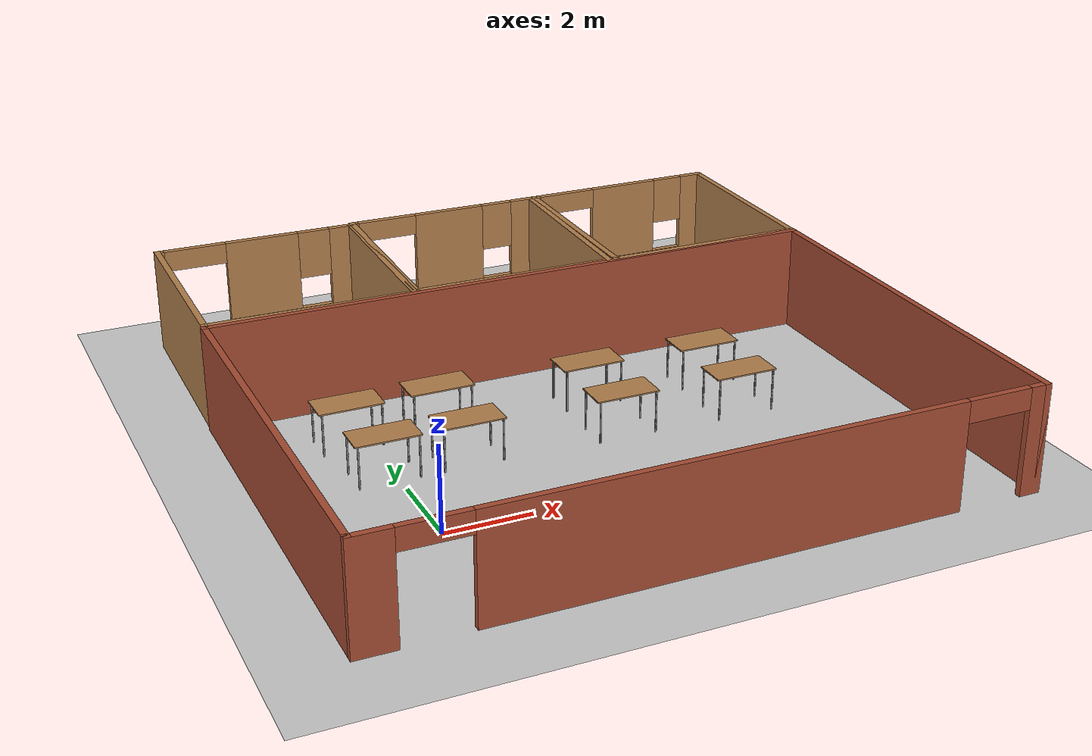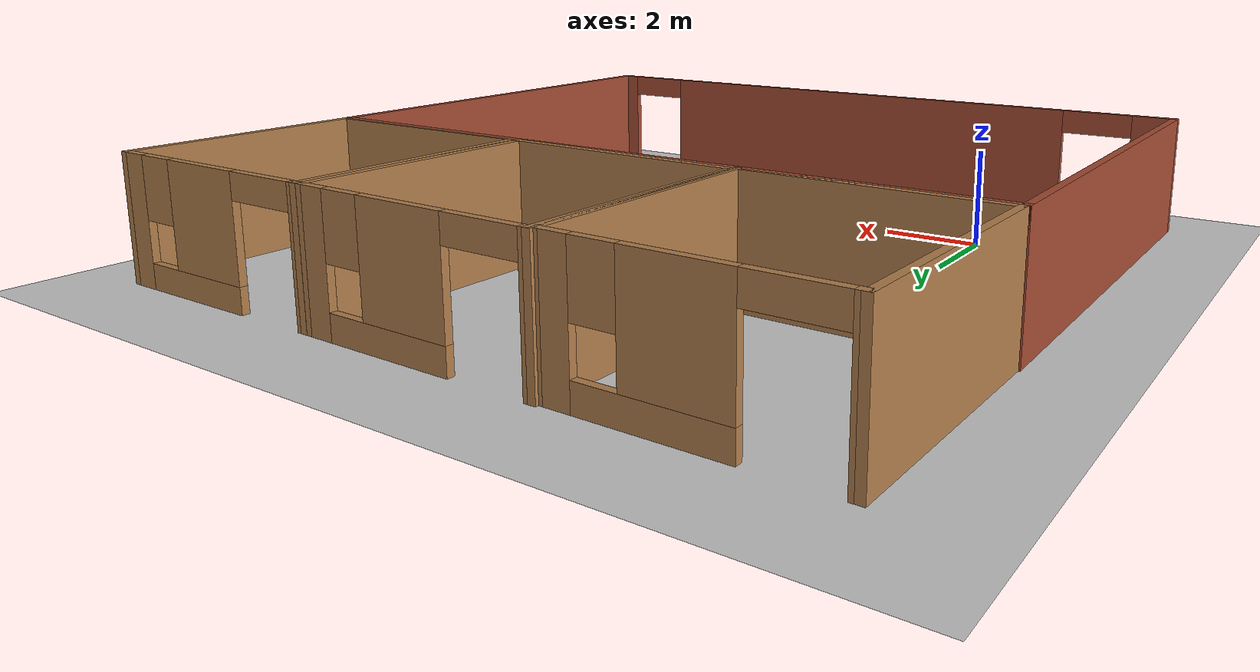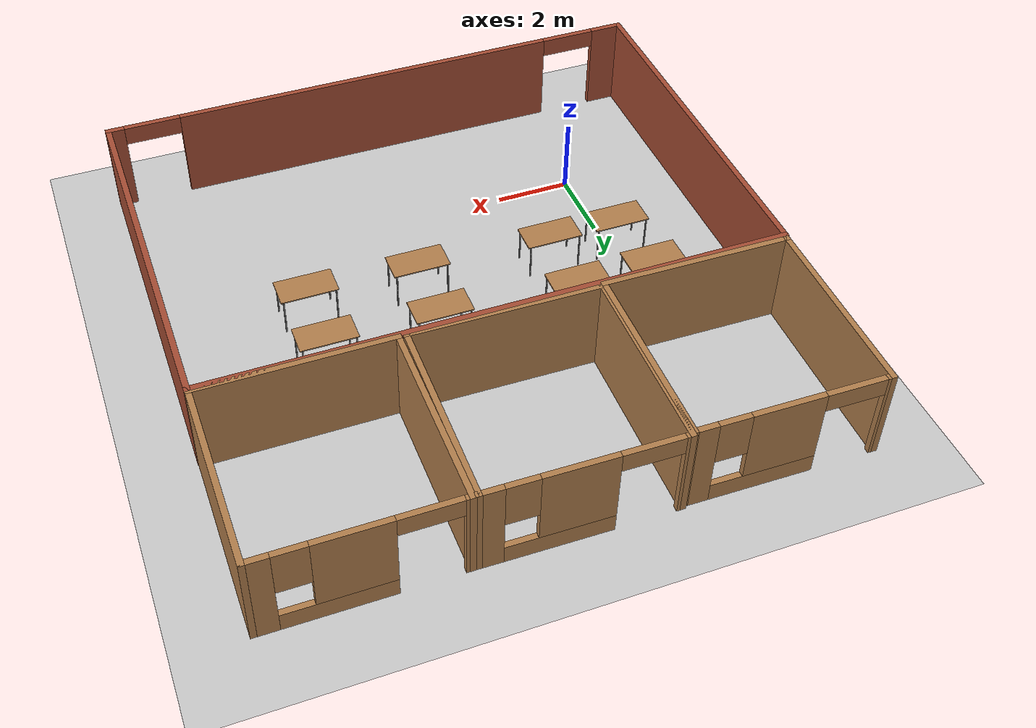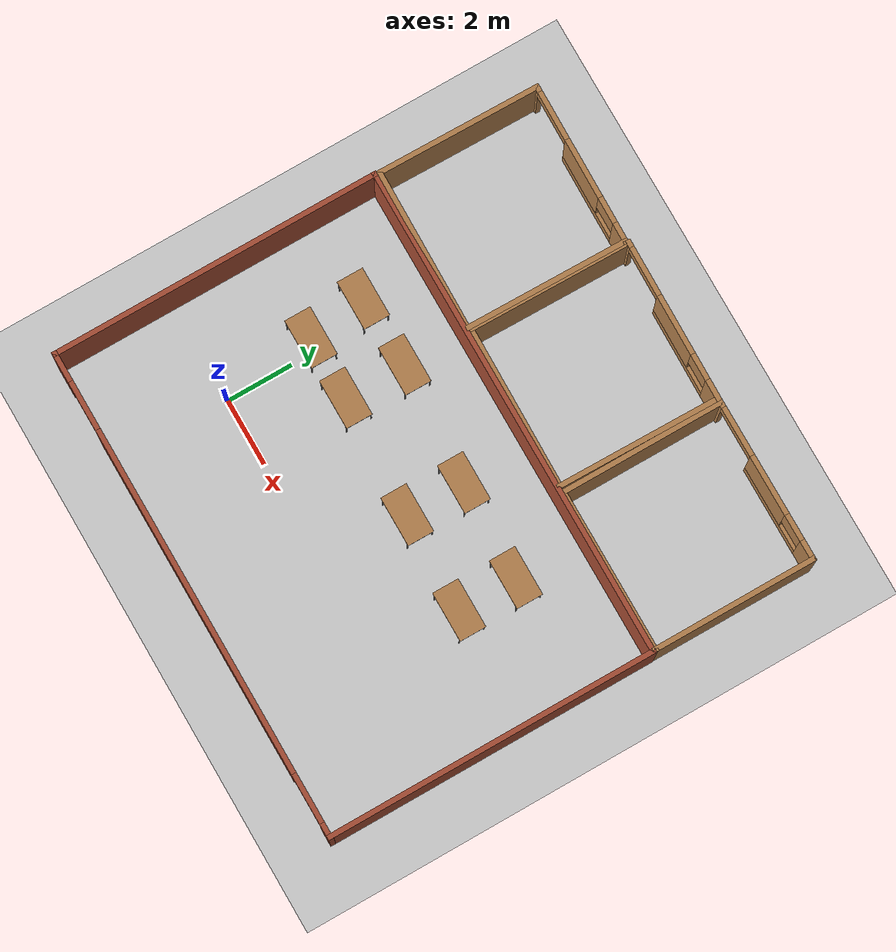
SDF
<sdf version="1.6">
 <world name="default">
  <model name="ground_plane">
   <static>1</static>
   <link name="link">
    <collision name="collision">
     <geometry><plane><normal>0 0 1</normal><size>100 100</size></plane></geometry>
     <surface>
      <contact><collide_bitmask>65535</collide_bitmask></contact>
      <friction><ode><mu>100</mu><mu2>50</mu2></ode></friction>
     </surface>
    </collision>
    <visual name="visual">
     <cast_shadows>0</cast_shadows>
     <geometry><plane><normal>0 0 1</normal><size>100 100</size></plane></geometry>
     <material>
      <script><uri>file://media/materials/scripts/gazebo.material</uri><name>Gazebo/Grey</name></script>
     </material>
    </visual>
   </link>
  </model>
  <model name="classroom">
   <pose>4.425 1.455 0 0 -0 0</pose>
   <link name="Wall_0">
    <collision name="Wall_0_Collision">
     <geometry><box><size>10 0.15 2.5</size></box></geometry>
     <pose>0 0 1.25 0 -0 0</pose>
    </collision>
    <visual name="Wall_0_Visual">
     <pose>0 0 1.25 0 -0 0</pose>
     <geometry><box><size>10 0.15 2.5</size></box></geometry>
     <material>
      <script><uri>file://media/materials/scripts/gazebo.material</uri><name>Gazebo/Bricks</name></script>
      <ambient>1 1 1 1</ambient>
     </material>
     <meta><layer>0</layer></meta>
    </visual>
    <pose>-7.425 0 0 0 -0 1.5708</pose>
   </link>
   <link name="Wall_2">
    <collision name="Wall_2_Collision">
     <geometry><box><size>15 0.15 2.5</size></box></geometry>
     <pose>0 0 1.25 0 -0 0</pose>
    </collision>
    <visual name="Wall_2_Visual">
     <pose>0 0 1.25 0 -0 0</pose>
     <geometry><box><size>15 0.15 2.5</size></box></geometry>
     <material>
      <script><uri>file://media/materials/scripts/gazebo.material</uri><name>Gazebo/Bricks</name></script>
      <ambient>1 1 1 1</ambient>
     </material>
     <meta><layer>0</layer></meta>
    </visual>
    <pose>0 4.925 0 0 -0 0</pose>
   </link>
   <link name="Wall_4">
    <collision name="Wall_4_Collision">
     <geometry><box><size>10 0.15 2.5</size></box></geometry>
     <pose>0 0 1.25 0 -0 0</pose>
    </collision>
    <visual name="Wall_4_Visual">
     <pose>0 0 1.25 0 -0 0</pose>
     <geometry><box><size>10 0.15 2.5</size></box></geometry>
     <material>
      <script><uri>file://media/materials/scripts/gazebo.material</uri><name>Gazebo/Bricks</name></script>
      <ambient>1 1 1 1</ambient>
     </material>
     <meta><layer>0</layer></meta>
    </visual>
    <pose>7.425 0 0 0 0 -1.5708</pose>
   </link>
   <link name="Wall_6">
    <pose>0 -4.925 0 0 -0 0</pose>
    <visual name="Wall_6_Visual_0">
     <pose>-7.03429 0 1.25 0 -0 0</pose>
     <geometry><box><size>0.931421 0.15 2.5</size></box></geometry>
     <material>
      <script><uri>file://media/materials/scripts/gazebo.material</uri><name>Gazebo/Bricks</name></script>
      <ambient>1 1 1 1</ambient>
     </material>
     <meta><layer>0</layer></meta>
    </visual>
    <collision name="Wall_6_Collision_0">
     <geometry><box><size>0.931421 0.15 2.5</size></box></geometry>
     <pose>-7.03429 0 1.25 0 -0 0</pose>
    </collision>
    <visual name="Wall_6_Visual_1">
     <pose>0.218509 0 1.25 0 -0 0</pose>
     <geometry><box><size>10.5742 0.15 2.5</size></box></geometry>
     <material>
      <script><uri>file://media/materials/scripts/gazebo.material</uri><name>Gazebo/Bricks</name></script>
      <ambient>1 1 1 1</ambient>
     </material>
     <meta><layer>0</layer></meta>
    </visual>
    <collision name="Wall_6_Collision_1">
     <geometry><box><size>10.5742 0.15 2.5</size></box></geometry>
     <pose>0.218509 0 1.25 0 -0 0</pose>
    </collision>
    <visual name="Wall_6_Visual_2">
     <pose>7.2528 0 1.25 0 -0 0</pose>
     <geometry><box><size>0.494402 0.15 2.5</size></box></geometry>
     <material>
      <script><uri>file://media/materials/scripts/gazebo.material</uri><name>Gazebo/Bricks</name></script>
      <ambient>1 1 1 1</ambient>
     </material>
     <meta><layer>0</layer></meta>
    </visual>
    <collision name="Wall_6_Collision_2">
     <geometry><box><size>0.494402 0.15 2.5</size></box></geometry>
     <pose>7.2528 0 1.25 0 -0 0</pose>
    </collision>
    <visual name="Wall_6_Visual_3">
     <pose>-5.81858 0 2.25 0 -0 0</pose>
     <geometry><box><size>1.5 0.15 0.5</size></box></geometry>
     <material>
      <script><uri>file://media/materials/scripts/gazebo.material</uri><name>Gazebo/Bricks</name></script>
      <ambient>1 1 1 1</ambient>
     </material>
     <meta><layer>0</layer></meta>
    </visual>
    <collision name="Wall_6_Collision_3">
     <geometry><box><size>1.5 0.15 0.5</size></box></geometry>
     <pose>-5.81858 0 2.25 0 -0 0</pose>
    </collision>
    <visual name="Wall_6_Visual_4">
     <pose>6.2556 0 2.25 0 -0 0</pose>
     <geometry><box><size>1.5 0.15 0.5</size></box></geometry>
     <material>
      <script><uri>file://media/materials/scripts/gazebo.material</uri><name>Gazebo/Bricks</name></script>
      <ambient>1 1 1 1</ambient>
     </material>
     <meta><layer>0</layer></meta>
    </visual>
    <collision name="Wall_6_Collision_4">
     <geometry><box><size>1.5 0.15 0.5</size></box></geometry>
     <pose>6.2556 0 2.25 0 -0 0</pose>
    </collision>
   </link>
   <static>1</static>
  </model>
  <model name="studio">
   <pose>9.41356 8.87492 0 0 -0 3.14131</pose>
   <link name="Wall_10">
    <collision name="Wall_10_Collision">
     <geometry><box><size>5 0.15 2.5</size></box></geometry>
     <pose>0 0 1.25 0 -0 0</pose>
    </collision>
    <visual name="Wall_10_Visual">
     <pose>0 0 1.25 0 -0 0</pose>
     <geometry><box><size>5 0.15 2.5</size></box></geometry>
     <material>
      <script><uri>file://media/materials/scripts/gazebo.material</uri><name>Gazebo/Wood</name></script>
      <ambient>1 1 1 1</ambient>
     </material>
     <meta><layer>0</layer></meta>
    </visual>
    <pose>0 2.42482 0 0 0 -7.3e-05</pose>
   </link>
   <link name="Wall_13">
    <collision name="Wall_13_Collision">
     <geometry><box><size>5 0.15 2.5</size></box></geometry>
     <pose>0 0 1.25 0 -0 0</pose>
    </collision>
    <visual name="Wall_13_Visual">
     <pose>0 0 1.25 0 -0 0</pose>
     <geometry><box><size>5 0.15 2.5</size></box></geometry>
     <material>
      <script><uri>file://media/materials/scripts/gazebo.material</uri><name>Gazebo/Wood</name></script>
      <ambient>1 1 1 1</ambient>
     </material>
     <meta><layer>0</layer></meta>
    </visual>
    <pose>-2.42502 -3e-06 0 0 0 -1.5708</pose>
   </link>
   <link name="Wall_15">
    <pose>-2e-05 -2.425 0 0 -0 0</pose>
    <visual name="Wall_15_Visual_0">
     <pose>-2.17395 0 1.25 0 -0 0</pose>
     <geometry><box><size>0.652095 0.15 2.5</size></box></geometry>
     <material>
      <script><uri>file://media/materials/scripts/gazebo.material</uri><name>Gazebo/Wood</name></script>
      <ambient>1 1 1 1</ambient>
     </material>
     <meta><layer>0</layer></meta>
    </visual>
    <collision name="Wall_15_Collision_0">
     <geometry><box><size>0.652095 0.15 2.5</size></box></geometry>
     <pose>-2.17395 0 1.25 0 -0 0</pose>
    </collision>
    <visual name="Wall_15_Visual_1">
     <pose>2.38574 0 1.25 0 -0 0</pose>
     <geometry><box><size>0.228515 0.15 2.5</size></box></geometry>
     <material>
      <script><uri>file://media/materials/scripts/gazebo.material</uri><name>Gazebo/Wood</name></script>
      <ambient>1 1 1 1</ambient>
     </material>
     <meta><layer>0</layer></meta>
    </visual>
    <collision name="Wall_15_Collision_1">
     <geometry><box><size>0.228515 0.15 2.5</size></box></geometry>
     <pose>2.38574 0 1.25 0 -0 0</pose>
    </collision>
    <visual name="Wall_15_Visual_2">
     <pose>-0.53821 0 0.25 0 -0 0</pose>
     <geometry><box><size>2.61939 0.15 0.5</size></box></geometry>
     <material>
      <script><uri>file://media/materials/scripts/gazebo.material</uri><name>Gazebo/Wood</name></script>
      <ambient>1 1 1 1</ambient>
     </material>
     <meta><layer>0</layer></meta>
    </visual>
    <collision name="Wall_15_Collision_2">
     <geometry><box><size>2.61939 0.15 0.5</size></box></geometry>
     <pose>-0.53821 0 0.25 0 -0 0</pose>
    </collision>
    <visual name="Wall_15_Visual_3">
     <pose>-0.13821 0 1.5 0 -0 0</pose>
     <geometry><box><size>1.81939 0.15 2</size></box></geometry>
     <material>
      <script><uri>file://media/materials/scripts/gazebo.material</uri><name>Gazebo/Wood</name></script>
      <ambient>1 1 1 1</ambient>
     </material>
     <meta><layer>0</layer></meta>
    </visual>
    <collision name="Wall_15_Collision_3">
     <geometry><box><size>1.81939 0.15 2</size></box></geometry>
     <pose>-0.13821 0 1.5 0 -0 0</pose>
    </collision>
    <visual name="Wall_15_Visual_4">
     <pose>-1.4479 0 1.9 0 -0 0</pose>
     <geometry><box><size>0.8 0.15 1.2</size></box></geometry>
     <material>
      <script><uri>file://media/materials/scripts/gazebo.material</uri><name>Gazebo/Wood</name></script>
      <ambient>1 1 1 1</ambient>
     </material>
     <meta><layer>0</layer></meta>
    </visual>
    <collision name="Wall_15_Collision_4">
     <geometry><box><size>0.8 0.15 1.2</size></box></geometry>
     <pose>-1.4479 0 1.9 0 -0 0</pose>
    </collision>
    <visual name="Wall_15_Visual_5">
     <pose>1.52148 0 2.25 0 -0 0</pose>
     <geometry><box><size>1.5 0.15 0.5</size></box></geometry>
     <material>
      <script><uri>file://media/materials/scripts/gazebo.material</uri><name>Gazebo/Wood</name></script>
      <ambient>1 1 1 1</ambient>
     </material>
     <meta><layer>0</layer></meta>
    </visual>
    <collision name="Wall_15_Collision_5">
     <geometry><box><size>1.5 0.15 0.5</size></box></geometry>
     <pose>1.52148 0 2.25 0 -0 0</pose>
    </collision>
   </link>
   <link name="Wall_16">
    <collision name="Wall_16_Collision">
     <geometry><box><size>4.99965 0.15 2.5</size></box></geometry>
     <pose>0 0 1.25 0 -0 0</pose>
    </collision>
    <visual name="Wall_16_Visual">
     <pose>0 0 1.25 0 -0 0</pose>
     <geometry><box><size>4.99965 0.15 2.5</size></box></geometry>
     <material>
      <script><uri>file://media/materials/scripts/gazebo.material</uri><name>Gazebo/Wood</name></script>
      <ambient>1 1 1 1</ambient>
     </material>
     <meta><layer>0</layer></meta>
    </visual>
    <pose>2.425 -0.00018 0 0 -0 1.57079</pose>
   </link>
   <static>1</static>
  </model>
  <model name="studio_0">
   <pose>4.40677 8.90584 0 0 -0 3.12886</pose>
   <link name="Wall_10">
    <collision name="Wall_10_Collision">
     <geometry><box><size>5 0.15 2.5</size></box></geometry>
     <pose>0 0 1.25 0 -0 0</pose>
    </collision>
    <visual name="Wall_10_Visual">
     <pose>0 0 1.25 0 -0 0</pose>
     <geometry><box><size>5 0.15 2.5</size></box></geometry>
     <material>
      <script><uri>file://media/materials/scripts/gazebo.material</uri><name>Gazebo/Wood</name></script>
      <ambient>1 1 1 1</ambient>
     </material>
     <meta><layer>0</layer></meta>
    </visual>
    <pose>0 2.42482 0 0 0 -7.3e-05</pose>
   </link>
   <link name="Wall_13">
    <collision name="Wall_13_Collision">
     <geometry><box><size>5 0.15 2.5</size></box></geometry>
     <pose>0 0 1.25 0 -0 0</pose>
    </collision>
    <visual name="Wall_13_Visual">
     <pose>0 0 1.25 0 -0 0</pose>
     <geometry><box><size>5 0.15 2.5</size></box></geometry>
     <material>
      <script><uri>file://media/materials/scripts/gazebo.material</uri><name>Gazebo/Wood</name></script>
      <ambient>1 1 1 1</ambient>
     </material>
     <meta><layer>0</layer></meta>
    </visual>
    <pose>-2.42502 -3e-06 0 0 0 -1.5708</pose>
   </link>
   <link name="Wall_15">
    <pose>-2e-05 -2.425 0 0 -0 0</pose>
    <visual name="Wall_15_Visual_0">
     <pose>-2.17395 0 1.25 0 -0 0</pose>
     <geometry><box><size>0.652095 0.15 2.5</size></box></geometry>
     <material>
      <script><uri>file://media/materials/scripts/gazebo.material</uri><name>Gazebo/Wood</name></script>
      <ambient>1 1 1 1</ambient>
     </material>
     <meta><layer>0</layer></meta>
    </visual>
    <collision name="Wall_15_Collision_0">
     <geometry><box><size>0.652095 0.15 2.5</size></box></geometry>
     <pose>-2.17395 0 1.25 0 -0 0</pose>
    </collision>
    <visual name="Wall_15_Visual_1">
     <pose>2.38574 0 1.25 0 -0 0</pose>
     <geometry><box><size>0.228515 0.15 2.5</size></box></geometry>
     <material>
      <script><uri>file://media/materials/scripts/gazebo.material</uri><name>Gazebo/Wood</name></script>
      <ambient>1 1 1 1</ambient>
     </material>
     <meta><layer>0</layer></meta>
    </visual>
    <collision name="Wall_15_Collision_1">
     <geometry><box><size>0.228515 0.15 2.5</size></box></geometry>
     <pose>2.38574 0 1.25 0 -0 0</pose>
    </collision>
    <visual name="Wall_15_Visual_2">
     <pose>-0.53821 0 0.25 0 -0 0</pose>
     <geometry><box><size>2.61939 0.15 0.5</size></box></geometry>
     <material>
      <script><uri>file://media/materials/scripts/gazebo.material</uri><name>Gazebo/Wood</name></script>
      <ambient>1 1 1 1</ambient>
     </material>
     <meta><layer>0</layer></meta>
    </visual>
    <collision name="Wall_15_Collision_2">
     <geometry><box><size>2.61939 0.15 0.5</size></box></geometry>
     <pose>-0.53821 0 0.25 0 -0 0</pose>
    </collision>
    <visual name="Wall_15_Visual_3">
     <pose>-0.13821 0 1.5 0 -0 0</pose>
     <geometry><box><size>1.81939 0.15 2</size></box></geometry>
     <material>
      <script><uri>file://media/materials/scripts/gazebo.material</uri><name>Gazebo/Wood</name></script>
      <ambient>1 1 1 1</ambient>
     </material>
     <meta><layer>0</layer></meta>
    </visual>
    <collision name="Wall_15_Collision_3">
     <geometry><box><size>1.81939 0.15 2</size></box></geometry>
     <pose>-0.13821 0 1.5 0 -0 0</pose>
    </collision>
    <visual name="Wall_15_Visual_4">
     <pose>-1.4479 0 1.9 0 -0 0</pose>
     <geometry><box><size>0.8 0.15 1.2</size></box></geometry>
     <material>
      <script><uri>file://media/materials/scripts/gazebo.material</uri><name>Gazebo/Wood</name></script>
      <ambient>1 1 1 1</ambient>
     </material>
     <meta><layer>0</layer></meta>
    </visual>
    <collision name="Wall_15_Collision_4">
     <geometry><box><size>0.8 0.15 1.2</size></box></geometry>
     <pose>-1.4479 0 1.9 0 -0 0</pose>
    </collision>
    <visual name="Wall_15_Visual_5">
     <pose>1.52148 0 2.25 0 -0 0</pose>
     <geometry><box><size>1.5 0.15 0.5</size></box></geometry>
     <material>
      <script><uri>file://media/materials/scripts/gazebo.material</uri><name>Gazebo/Wood</name></script>
      <ambient>1 1 1 1</ambient>
     </material>
     <meta><layer>0</layer></meta>
    </visual>
    <collision name="Wall_15_Collision_5">
     <geometry><box><size>1.5 0.15 0.5</size></box></geometry>
     <pose>1.52148 0 2.25 0 -0 0</pose>
    </collision>
   </link>
   <link name="Wall_16">
    <collision name="Wall_16_Collision">
     <geometry><box><size>4.99965 0.15 2.5</size></box></geometry>
     <pose>0 0 1.25 0 -0 0</pose>
    </collision>
    <visual name="Wall_16_Visual">
     <pose>0 0 1.25 0 -0 0</pose>
     <geometry><box><size>4.99965 0.15 2.5</size></box></geometry>
     <material>
      <script><uri>file://media/materials/scripts/gazebo.material</uri><name>Gazebo/Wood</name></script>
      <ambient>1 1 1 1</ambient>
     </material>
     <meta><layer>0</layer></meta>
    </visual>
    <pose>2.425 -0.00018 0 0 -0 1.57079</pose>
   </link>
   <static>1</static>
  </model>
  <model name="studio_1">
   <pose>-0.513767 8.90661 0 0 -0 3.12855</pose>
   <link name="Wall_10">
    <collision name="Wall_10_Collision">
     <geometry><box><size>5 0.15 2.5</size></box></geometry>
     <pose>0 0 1.25 0 -0 0</pose>
    </collision>
    <visual name="Wall_10_Visual">
     <pose>0 0 1.25 0 -0 0</pose>
     <geometry><box><size>5 0.15 2.5</size></box></geometry>
     <material>
      <script><uri>file://media/materials/scripts/gazebo.material</uri><name>Gazebo/Wood</name></script>
      <ambient>1 1 1 1</ambient>
     </material>
     <meta><layer>0</layer></meta>
    </visual>
    <pose>0 2.42482 0 0 0 -7.3e-05</pose>
   </link>
   <link name="Wall_13">
    <collision name="Wall_13_Collision">
     <geometry><box><size>5 0.15 2.5</size></box></geometry>
     <pose>0 0 1.25 0 -0 0</pose>
    </collision>
    <visual name="Wall_13_Visual">
     <pose>0 0 1.25 0 -0 0</pose>
     <geometry><box><size>5 0.15 2.5</size></box></geometry>
     <material>
      <script><uri>file://media/materials/scripts/gazebo.material</uri><name>Gazebo/Wood</name></script>
      <ambient>1 1 1 1</ambient>
     </material>
     <meta><layer>0</layer></meta>
    </visual>
    <pose>-2.42502 -3e-06 0 0 0 -1.5708</pose>
   </link>
   <link name="Wall_15">
    <pose>-2e-05 -2.425 0 0 -0 0</pose>
    <visual name="Wall_15_Visual_0">
     <pose>-2.17395 0 1.25 0 -0 0</pose>
     <geometry><box><size>0.652095 0.15 2.5</size></box></geometry>
     <material>
      <script><uri>file://media/materials/scripts/gazebo.material</uri><name>Gazebo/Wood</name></script>
      <ambient>1 1 1 1</ambient>
     </material>
     <meta><layer>0</layer></meta>
    </visual>
    <collision name="Wall_15_Collision_0">
     <geometry><box><size>0.652095 0.15 2.5</size></box></geometry>
     <pose>-2.17395 0 1.25 0 -0 0</pose>
    </collision>
    <visual name="Wall_15_Visual_1">
     <pose>2.38574 0 1.25 0 -0 0</pose>
     <geometry><box><size>0.228515 0.15 2.5</size></box></geometry>
     <material>
      <script><uri>file://media/materials/scripts/gazebo.material</uri><name>Gazebo/Wood</name></script>
      <ambient>1 1 1 1</ambient>
     </material>
     <meta><layer>0</layer></meta>
    </visual>
    <collision name="Wall_15_Collision_1">
     <geometry><box><size>0.228515 0.15 2.5</size></box></geometry>
     <pose>2.38574 0 1.25 0 -0 0</pose>
    </collision>
    <visual name="Wall_15_Visual_2">
     <pose>-0.53821 0 0.25 0 -0 0</pose>
     <geometry><box><size>2.61939 0.15 0.5</size></box></geometry>
     <material>
      <script><uri>file://media/materials/scripts/gazebo.material</uri><name>Gazebo/Wood</name></script>
      <ambient>1 1 1 1</ambient>
     </material>
     <meta><layer>0</layer></meta>
    </visual>
    <collision name="Wall_15_Collision_2">
     <geometry><box><size>2.61939 0.15 0.5</size></box></geometry>
     <pose>-0.53821 0 0.25 0 -0 0</pose>
    </collision>
    <visual name="Wall_15_Visual_3">
     <pose>-0.13821 0 1.5 0 -0 0</pose>
     <geometry><box><size>1.81939 0.15 2</size></box></geometry>
     <material>
      <script><uri>file://media/materials/scripts/gazebo.material</uri><name>Gazebo/Wood</name></script>
      <ambient>1 1 1 1</ambient>
     </material>
     <meta><layer>0</layer></meta>
    </visual>
    <collision name="Wall_15_Collision_3">
     <geometry><box><size>1.81939 0.15 2</size></box></geometry>
     <pose>-0.13821 0 1.5 0 -0 0</pose>
    </collision>
    <visual name="Wall_15_Visual_4">
     <pose>-1.4479 0 1.9 0 -0 0</pose>
     <geometry><box><size>0.8 0.15 1.2</size></box></geometry>
     <material>
      <script><uri>file://media/materials/scripts/gazebo.material</uri><name>Gazebo/Wood</name></script>
      <ambient>1 1 1 1</ambient>
     </material>
     <meta><layer>0</layer></meta>
    </visual>
    <collision name="Wall_15_Collision_4">
     <geometry><box><size>0.8 0.15 1.2</size></box></geometry>
     <pose>-1.4479 0 1.9 0 -0 0</pose>
    </collision>
    <visual name="Wall_15_Visual_5">
     <pose>1.52148 0 2.25 0 -0 0</pose>
     <geometry><box><size>1.5 0.15 0.5</size></box></geometry>
     <material>
      <script><uri>file://media/materials/scripts/gazebo.material</uri><name>Gazebo/Wood</name></script>
      <ambient>1 1 1 1</ambient>
     </material>
     <meta><layer>0</layer></meta>
    </visual>
    <collision name="Wall_15_Collision_5">
     <geometry><box><size>1.5 0.15 0.5</size></box></geometry>
     <pose>1.52148 0 2.25 0 -0 0</pose>
    </collision>
   </link>
   <link name="Wall_16">
    <collision name="Wall_16_Collision">
     <geometry><box><size>4.99965 0.15 2.5</size></box></geometry>
     <pose>0 0 1.25 0 -0 0</pose>
    </collision>
    <visual name="Wall_16_Visual">
     <pose>0 0 1.25 0 -0 0</pose>
     <geometry><box><size>4.99965 0.15 2.5</size></box></geometry>
     <material>
      <script><uri>file://media/materials/scripts/gazebo.material</uri><name>Gazebo/Wood</name></script>
      <ambient>1 1 1 1</ambient>
     </material>
     <meta><layer>0</layer></meta>
    </visual>
    <pose>2.425 -0.00018 0 0 -0 1.57079</pose>
   </link>
   <static>1</static>
  </model>
  <model name="table_11">
   <static>1</static>
   <link name="link">
    <collision name="surface">
     <pose>0 0 1 0 -0 0</pose>
     <geometry><box><size>1.5 0.8 0.03</size></box></geometry>
     <surface><friction><ode><mu>0.6</mu><mu2>0.6</mu2></ode></friction></surface>
    </collision>
    <visual name="visual1">
     <pose>0 0 1 0 -0 0</pose>
     <geometry><box><size>1.5 0.8 0.03</size></box></geometry>
     <material>
      <script><uri>file://media/materials/scripts/gazebo.material</uri><name>Gazebo/Wood</name></script>
     </material>
    </visual>
    <collision name="front_left_leg">
     <pose>0.68 0.38 0.5 0 -0 0</pose>
     <geometry><cylinder><radius>0.02</radius><length>1</length></cylinder></geometry>
    </collision>
    <visual name="front_left_leg">
     <pose>0.68 0.38 0.5 0 -0 0</pose>
     <geometry><cylinder><radius>0.02</radius><length>1</length></cylinder></geometry>
     <material>
      <script><uri>file://media/materials/scripts/gazebo.material</uri><name>Gazebo/Grey</name></script>
     </material>
    </visual>
    <collision name="front_right_leg">
     <pose>0.68 -0.38 0.5 0 -0 0</pose>
     <geometry><cylinder><radius>0.02</radius><length>1</length></cylinder></geometry>
    </collision>
    <visual name="front_right_leg">
     <pose>0.68 -0.38 0.5 0 -0 0</pose>
     <geometry><cylinder><radius>0.02</radius><length>1</length></cylinder></geometry>
     <material>
      <script><uri>file://media/materials/scripts/gazebo.material</uri><name>Gazebo/Grey</name></script>
     </material>
    </visual>
    <collision name="back_right_leg">
     <pose>-0.68 -0.38 0.5 0 -0 0</pose>
     <geometry><cylinder><radius>0.02</radius><length>1</length></cylinder></geometry>
    </collision>
    <visual name="back_right_leg">
     <pose>-0.68 -0.38 0.5 0 -0 0</pose>
     <geometry><cylinder><radius>0.02</radius><length>1</length></cylinder></geometry>
     <material>
      <script><uri>file://media/materials/scripts/gazebo.material</uri><name>Gazebo/Grey</name></script>
     </material>
    </visual>
    <collision name="back_left_leg">
     <pose>-0.68 0.38 0.5 0 -0 0</pose>
     <geometry><cylinder><radius>0.02</radius><length>1</length></cylinder></geometry>
    </collision>
    <visual name="back_left_leg">
     <pose>-0.68 0.38 0.5 0 -0 0</pose>
     <geometry><cylinder><radius>0.02</radius><length>1</length></cylinder></geometry>
     <material>
      <script><uri>file://media/materials/scripts/gazebo.material</uri><name>Gazebo/Grey</name></script>
     </material>
    </visual>
   </link>
   <pose>8.2006 2.56286 0 0 -0 0</pose>
  </model>
  <model name="table_12">
   <static>1</static>
   <link name="link">
    <collision name="surface">
     <pose>0 0 1 0 -0 0</pose>
     <geometry><box><size>1.5 0.8 0.03</size></box></geometry>
     <surface><friction><ode><mu>0.6</mu><mu2>0.6</mu2></ode></friction></surface>
    </collision>
    <visual name="visual1">
     <pose>0 0 1 0 -0 0</pose>
     <geometry><box><size>1.5 0.8 0.03</size></box></geometry>
     <material>
      <script><uri>file://media/materials/scripts/gazebo.material</uri><name>Gazebo/Wood</name></script>
     </material>
    </visual>
    <collision name="front_left_leg">
     <pose>0.68 0.38 0.5 0 -0 0</pose>
     <geometry><cylinder><radius>0.02</radius><length>1</length></cylinder></geometry>
    </collision>
    <visual name="front_left_leg">
     <pose>0.68 0.38 0.5 0 -0 0</pose>
     <geometry><cylinder><radius>0.02</radius><length>1</length></cylinder></geometry>
     <material>
      <script><uri>file://media/materials/scripts/gazebo.material</uri><name>Gazebo/Grey</name></script>
     </material>
    </visual>
    <collision name="front_right_leg">
     <pose>0.68 -0.38 0.5 0 -0 0</pose>
     <geometry><cylinder><radius>0.02</radius><length>1</length></cylinder></geometry>
    </collision>
    <visual name="front_right_leg">
     <pose>0.68 -0.38 0.5 0 -0 0</pose>
     <geometry><cylinder><radius>0.02</radius><length>1</length></cylinder></geometry>
     <material>
      <script><uri>file://media/materials/scripts/gazebo.material</uri><name>Gazebo/Grey</name></script>
     </material>
    </visual>
    <collision name="back_right_leg">
     <pose>-0.68 -0.38 0.5 0 -0 0</pose>
     <geometry><cylinder><radius>0.02</radius><length>1</length></cylinder></geometry>
    </collision>
    <visual name="back_right_leg">
     <pose>-0.68 -0.38 0.5 0 -0 0</pose>
     <geometry><cylinder><radius>0.02</radius><length>1</length></cylinder></geometry>
     <material>
      <script><uri>file://media/materials/scripts/gazebo.material</uri><name>Gazebo/Grey</name></script>
     </material>
    </visual>
    <collision name="back_left_leg">
     <pose>-0.68 0.38 0.5 0 -0 0</pose>
     <geometry><cylinder><radius>0.02</radius><length>1</length></cylinder></geometry>
    </collision>
    <visual name="back_left_leg">
     <pose>-0.68 0.38 0.5 0 -0 0</pose>
     <geometry><cylinder><radius>0.02</radius><length>1</length></cylinder></geometry>
     <material>
      <script><uri>file://media/materials/scripts/gazebo.material</uri><name>Gazebo/Grey</name></script>
     </material>
    </visual>
   </link>
   <pose>8.20054 4.32169 0 0 -0 0</pose>
  </model>
  <model name="table_15">
   <static>1</static>
   <link name="link">
    <collision name="surface">
     <pose>0 0 1 0 -0 0</pose>
     <geometry><box><size>1.5 0.8 0.03</size></box></geometry>
     <surface><friction><ode><mu>0.6</mu><mu2>0.6</mu2></ode></friction></surface>
    </collision>
    <visual name="visual1">
     <pose>0 0 1 0 -0 0</pose>
     <geometry><box><size>1.5 0.8 0.03</size></box></geometry>
     <material>
      <script><uri>file://media/materials/scripts/gazebo.material</uri><name>Gazebo/Wood</name></script>
     </material>
    </visual>
    <collision name="front_left_leg">
     <pose>0.68 0.38 0.5 0 -0 0</pose>
     <geometry><cylinder><radius>0.02</radius><length>1</length></cylinder></geometry>
    </collision>
    <visual name="front_left_leg">
     <pose>0.68 0.38 0.5 0 -0 0</pose>
     <geometry><cylinder><radius>0.02</radius><length>1</length></cylinder></geometry>
     <material>
      <script><uri>file://media/materials/scripts/gazebo.material</uri><name>Gazebo/Grey</name></script>
     </material>
    </visual>
    <collision name="front_right_leg">
     <pose>0.68 -0.38 0.5 0 -0 0</pose>
     <geometry><cylinder><radius>0.02</radius><length>1</length></cylinder></geometry>
    </collision>
    <visual name="front_right_leg">
     <pose>0.68 -0.38 0.5 0 -0 0</pose>
     <geometry><cylinder><radius>0.02</radius><length>1</length></cylinder></geometry>
     <material>
      <script><uri>file://media/materials/scripts/gazebo.material</uri><name>Gazebo/Grey</name></script>
     </material>
    </visual>
    <collision name="back_right_leg">
     <pose>-0.68 -0.38 0.5 0 -0 0</pose>
     <geometry><cylinder><radius>0.02</radius><length>1</length></cylinder></geometry>
    </collision>
    <visual name="back_right_leg">
     <pose>-0.68 -0.38 0.5 0 -0 0</pose>
     <geometry><cylinder><radius>0.02</radius><length>1</length></cylinder></geometry>
     <material>
      <script><uri>file://media/materials/scripts/gazebo.material</uri><name>Gazebo/Grey</name></script>
     </material>
    </visual>
    <collision name="back_left_leg">
     <pose>-0.68 0.38 0.5 0 -0 0</pose>
     <geometry><cylinder><radius>0.02</radius><length>1</length></cylinder></geometry>
    </collision>
    <visual name="back_left_leg">
     <pose>-0.68 0.38 0.5 0 -0 0</pose>
     <geometry><cylinder><radius>0.02</radius><length>1</length></cylinder></geometry>
     <material>
      <script><uri>file://media/materials/scripts/gazebo.material</uri><name>Gazebo/Grey</name></script>
     </material>
    </visual>
   </link>
   <pose>5.26825 2.63609 0 0 -0 0</pose>
  </model>
  <model name="table_16">
   <static>1</static>
   <link name="link">
    <collision name="surface">
     <pose>0 0 1 0 -0 0</pose>
     <geometry><box><size>1.5 0.8 0.03</size></box></geometry>
     <surface><friction><ode><mu>0.6</mu><mu2>0.6</mu2></ode></friction></surface>
    </collision>
    <visual name="visual1">
     <pose>0 0 1 0 -0 0</pose>
     <geometry><box><size>1.5 0.8 0.03</size></box></geometry>
     <material>
      <script><uri>file://media/materials/scripts/gazebo.material</uri><name>Gazebo/Wood</name></script>
     </material>
    </visual>
    <collision name="front_left_leg">
     <pose>0.68 0.38 0.5 0 -0 0</pose>
     <geometry><cylinder><radius>0.02</radius><length>1</length></cylinder></geometry>
    </collision>
    <visual name="front_left_leg">
     <pose>0.68 0.38 0.5 0 -0 0</pose>
     <geometry><cylinder><radius>0.02</radius><length>1</length></cylinder></geometry>
     <material>
      <script><uri>file://media/materials/scripts/gazebo.material</uri><name>Gazebo/Grey</name></script>
     </material>
    </visual>
    <collision name="front_right_leg">
     <pose>0.68 -0.38 0.5 0 -0 0</pose>
     <geometry><cylinder><radius>0.02</radius><length>1</length></cylinder></geometry>
    </collision>
    <visual name="front_right_leg">
     <pose>0.68 -0.38 0.5 0 -0 0</pose>
     <geometry><cylinder><radius>0.02</radius><length>1</length></cylinder></geometry>
     <material>
      <script><uri>file://media/materials/scripts/gazebo.material</uri><name>Gazebo/Grey</name></script>
     </material>
    </visual>
    <collision name="back_right_leg">
     <pose>-0.68 -0.38 0.5 0 -0 0</pose>
     <geometry><cylinder><radius>0.02</radius><length>1</length></cylinder></geometry>
    </collision>
    <visual name="back_right_leg">
     <pose>-0.68 -0.38 0.5 0 -0 0</pose>
     <geometry><cylinder><radius>0.02</radius><length>1</length></cylinder></geometry>
     <material>
      <script><uri>file://media/materials/scripts/gazebo.material</uri><name>Gazebo/Grey</name></script>
     </material>
    </visual>
    <collision name="back_left_leg">
     <pose>-0.68 0.38 0.5 0 -0 0</pose>
     <geometry><cylinder><radius>0.02</radius><length>1</length></cylinder></geometry>
    </collision>
    <visual name="back_left_leg">
     <pose>-0.68 0.38 0.5 0 -0 0</pose>
     <geometry><cylinder><radius>0.02</radius><length>1</length></cylinder></geometry>
     <material>
      <script><uri>file://media/materials/scripts/gazebo.material</uri><name>Gazebo/Grey</name></script>
     </material>
    </visual>
   </link>
   <pose>5.26825 4.39562 0 0 -0 0</pose>
  </model>
  <model name="table_19">
   <static>1</static>
   <link name="link">
    <collision name="surface">
     <pose>0 0 1 0 -0 0</pose>
     <geometry><box><size>1.5 0.8 0.03</size></box></geometry>
     <surface><friction><ode><mu>0.6</mu><mu2>0.6</mu2></ode></friction></surface>
    </collision>
    <visual name="visual1">
     <pose>0 0 1 0 -0 0</pose>
     <geometry><box><size>1.5 0.8 0.03</size></box></geometry>
     <material>
      <script><uri>file://media/materials/scripts/gazebo.material</uri><name>Gazebo/Wood</name></script>
     </material>
    </visual>
    <collision name="front_left_leg">
     <pose>0.68 0.38 0.5 0 -0 0</pose>
     <geometry><cylinder><radius>0.02</radius><length>1</length></cylinder></geometry>
    </collision>
    <visual name="front_left_leg">
     <pose>0.68 0.38 0.5 0 -0 0</pose>
     <geometry><cylinder><radius>0.02</radius><length>1</length></cylinder></geometry>
     <material>
      <script><uri>file://media/materials/scripts/gazebo.material</uri><name>Gazebo/Grey</name></script>
     </material>
    </visual>
    <collision name="front_right_leg">
     <pose>0.68 -0.38 0.5 0 -0 0</pose>
     <geometry><cylinder><radius>0.02</radius><length>1</length></cylinder></geometry>
    </collision>
    <visual name="front_right_leg">
     <pose>0.68 -0.38 0.5 0 -0 0</pose>
     <geometry><cylinder><radius>0.02</radius><length>1</length></cylinder></geometry>
     <material>
      <script><uri>file://media/materials/scripts/gazebo.material</uri><name>Gazebo/Grey</name></script>
     </material>
    </visual>
    <collision name="back_right_leg">
     <pose>-0.68 -0.38 0.5 0 -0 0</pose>
     <geometry><cylinder><radius>0.02</radius><length>1</length></cylinder></geometry>
    </collision>
    <visual name="back_right_leg">
     <pose>-0.68 -0.38 0.5 0 -0 0</pose>
     <geometry><cylinder><radius>0.02</radius><length>1</length></cylinder></geometry>
     <material>
      <script><uri>file://media/materials/scripts/gazebo.material</uri><name>Gazebo/Grey</name></script>
     </material>
    </visual>
    <collision name="back_left_leg">
     <pose>-0.68 0.38 0.5 0 -0 0</pose>
     <geometry><cylinder><radius>0.02</radius><length>1</length></cylinder></geometry>
    </collision>
    <visual name="back_left_leg">
     <pose>-0.68 0.38 0.5 0 -0 0</pose>
     <geometry><cylinder><radius>0.02</radius><length>1</length></cylinder></geometry>
     <material>
      <script><uri>file://media/materials/scripts/gazebo.material</uri><name>Gazebo/Grey</name></script>
     </material>
    </visual>
   </link>
   <pose>1.67614 2.78198 0 0 -0 0</pose>
  </model>
  <model name="table_20">
   <static>1</static>
   <link name="link">
    <collision name="surface">
     <pose>0 0 1 0 -0 0</pose>
     <geometry><box><size>1.5 0.8 0.03</size></box></geometry>
     <surface><friction><ode><mu>0.6</mu><mu2>0.6</mu2></ode></friction></surface>
    </collision>
    <visual name="visual1">
     <pose>0 0 1 0 -0 0</pose>
     <geometry><box><size>1.5 0.8 0.03</size></box></geometry>
     <material>
      <script><uri>file://media/materials/scripts/gazebo.material</uri><name>Gazebo/Wood</name></script>
     </material>
    </visual>
    <collision name="front_left_leg">
     <pose>0.68 0.38 0.5 0 -0 0</pose>
     <geometry><cylinder><radius>0.02</radius><length>1</length></cylinder></geometry>
    </collision>
    <visual name="front_left_leg">
     <pose>0.68 0.38 0.5 0 -0 0</pose>
     <geometry><cylinder><radius>0.02</radius><length>1</length></cylinder></geometry>
     <material>
      <script><uri>file://media/materials/scripts/gazebo.material</uri><name>Gazebo/Grey</name></script>
     </material>
    </visual>
    <collision name="front_right_leg">
     <pose>0.68 -0.38 0.5 0 -0 0</pose>
     <geometry><cylinder><radius>0.02</radius><length>1</length></cylinder></geometry>
    </collision>
    <visual name="front_right_leg">
     <pose>0.68 -0.38 0.5 0 -0 0</pose>
     <geometry><cylinder><radius>0.02</radius><length>1</length></cylinder></geometry>
     <material>
      <script><uri>file://media/materials/scripts/gazebo.material</uri><name>Gazebo/Grey</name></script>
     </material>
    </visual>
    <collision name="back_right_leg">
     <pose>-0.68 -0.38 0.5 0 -0 0</pose>
     <geometry><cylinder><radius>0.02</radius><length>1</length></cylinder></geometry>
    </collision>
    <visual name="back_right_leg">
     <pose>-0.68 -0.38 0.5 0 -0 0</pose>
     <geometry><cylinder><radius>0.02</radius><length>1</length></cylinder></geometry>
     <material>
      <script><uri>file://media/materials/scripts/gazebo.material</uri><name>Gazebo/Grey</name></script>
     </material>
    </visual>
    <collision name="back_left_leg">
     <pose>-0.68 0.38 0.5 0 -0 0</pose>
     <geometry><cylinder><radius>0.02</radius><length>1</length></cylinder></geometry>
    </collision>
    <visual name="back_left_leg">
     <pose>-0.68 0.38 0.5 0 -0 0</pose>
     <geometry><cylinder><radius>0.02</radius><length>1</length></cylinder></geometry>
     <material>
      <script><uri>file://media/materials/scripts/gazebo.material</uri><name>Gazebo/Grey</name></script>
     </material>
    </visual>
   </link>
   <pose>1.67614 4.61543 0 0 -0 0</pose>
  </model>
  <model name="table_23">
   <static>1</static>
   <link name="link">
    <collision name="surface">
     <pose>0 0 1 0 -0 0</pose>
     <geometry><box><size>1.5 0.8 0.03</size></box></geometry>
     <surface><friction><ode><mu>0.6</mu><mu2>0.6</mu2></ode></friction></surface>
    </collision>
    <visual name="visual1">
     <pose>0 0 1 0 -0 0</pose>
     <geometry><box><size>1.5 0.8 0.03</size></box></geometry>
     <material>
      <script><uri>file://media/materials/scripts/gazebo.material</uri><name>Gazebo/Wood</name></script>
     </material>
    </visual>
    <collision name="front_left_leg">
     <pose>0.68 0.38 0.5 0 -0 0</pose>
     <geometry><cylinder><radius>0.02</radius><length>1</length></cylinder></geometry>
    </collision>
    <visual name="front_left_leg">
     <pose>0.68 0.38 0.5 0 -0 0</pose>
     <geometry><cylinder><radius>0.02</radius><length>1</length></cylinder></geometry>
     <material>
      <script><uri>file://media/materials/scripts/gazebo.material</uri><name>Gazebo/Grey</name></script>
     </material>
    </visual>
    <collision name="front_right_leg">
     <pose>0.68 -0.38 0.5 0 -0 0</pose>
     <geometry><cylinder><radius>0.02</radius><length>1</length></cylinder></geometry>
    </collision>
    <visual name="front_right_leg">
     <pose>0.68 -0.38 0.5 0 -0 0</pose>
     <geometry><cylinder><radius>0.02</radius><length>1</length></cylinder></geometry>
     <material>
      <script><uri>file://media/materials/scripts/gazebo.material</uri><name>Gazebo/Grey</name></script>
     </material>
    </visual>
    <collision name="back_right_leg">
     <pose>-0.68 -0.38 0.5 0 -0 0</pose>
     <geometry><cylinder><radius>0.02</radius><length>1</length></cylinder></geometry>
    </collision>
    <visual name="back_right_leg">
     <pose>-0.68 -0.38 0.5 0 -0 0</pose>
     <geometry><cylinder><radius>0.02</radius><length>1</length></cylinder></geometry>
     <material>
      <script><uri>file://media/materials/scripts/gazebo.material</uri><name>Gazebo/Grey</name></script>
     </material>
    </visual>
    <collision name="back_left_leg">
     <pose>-0.68 0.38 0.5 0 -0 0</pose>
     <geometry><cylinder><radius>0.02</radius><length>1</length></cylinder></geometry>
    </collision>
    <visual name="back_left_leg">
     <pose>-0.68 0.38 0.5 0 -0 0</pose>
     <geometry><cylinder><radius>0.02</radius><length>1</length></cylinder></geometry>
     <material>
      <script><uri>file://media/materials/scripts/gazebo.material</uri><name>Gazebo/Grey</name></script>
     </material>
    </visual>
   </link>
   <pose>-0.229884 2.78198 0 0 -0 0</pose>
  </model>
  <model name="table_24">
   <static>1</static>
   <link name="link">
    <collision name="surface">
     <pose>0 0 1 0 -0 0</pose>
     <geometry><box><size>1.5 0.8 0.03</size></box></geometry>
     <surface><friction><ode><mu>0.6</mu><mu2>0.6</mu2></ode></friction></surface>
    </collision>
    <visual name="visual1">
     <pose>0 0 1 0 -0 0</pose>
     <geometry><box><size>1.5 0.8 0.03</size></box></geometry>
     <material>
      <script><uri>file://media/materials/scripts/gazebo.material</uri><name>Gazebo/Wood</name></script>
     </material>
    </visual>
    <collision name="front_left_leg">
     <pose>0.68 0.38 0.5 0 -0 0</pose>
     <geometry><cylinder><radius>0.02</radius><length>1</length></cylinder></geometry>
    </collision>
    <visual name="front_left_leg">
     <pose>0.68 0.38 0.5 0 -0 0</pose>
     <geometry><cylinder><radius>0.02</radius><length>1</length></cylinder></geometry>
     <material>
      <script><uri>file://media/materials/scripts/gazebo.material</uri><name>Gazebo/Grey</name></script>
     </material>
    </visual>
    <collision name="front_right_leg">
     <pose>0.68 -0.38 0.5 0 -0 0</pose>
     <geometry><cylinder><radius>0.02</radius><length>1</length></cylinder></geometry>
    </collision>
    <visual name="front_right_leg">
     <pose>0.68 -0.38 0.5 0 -0 0</pose>
     <geometry><cylinder><radius>0.02</radius><length>1</length></cylinder></geometry>
     <material>
      <script><uri>file://media/materials/scripts/gazebo.material</uri><name>Gazebo/Grey</name></script>
     </material>
    </visual>
    <collision name="back_right_leg">
     <pose>-0.68 -0.38 0.5 0 -0 0</pose>
     <geometry><cylinder><radius>0.02</radius><length>1</length></cylinder></geometry>
    </collision>
    <visual name="back_right_leg">
     <pose>-0.68 -0.38 0.5 0 -0 0</pose>
     <geometry><cylinder><radius>0.02</radius><length>1</length></cylinder></geometry>
     <material>
      <script><uri>file://media/materials/scripts/gazebo.material</uri><name>Gazebo/Grey</name></script>
     </material>
    </visual>
    <collision name="back_left_leg">
     <pose>-0.68 0.38 0.5 0 -0 0</pose>
     <geometry><cylinder><radius>0.02</radius><length>1</length></cylinder></geometry>
    </collision>
    <visual name="back_left_leg">
     <pose>-0.68 0.38 0.5 0 -0 0</pose>
     <geometry><cylinder><radius>0.02</radius><length>1</length></cylinder></geometry>
     <material>
      <script><uri>file://media/materials/scripts/gazebo.material</uri><name>Gazebo/Grey</name></script>
     </material>
    </visual>
   </link>
   <pose>-0.449824 4.5415 0 0 -0 0</pose>
  </model>
 </world>
</sdf>
